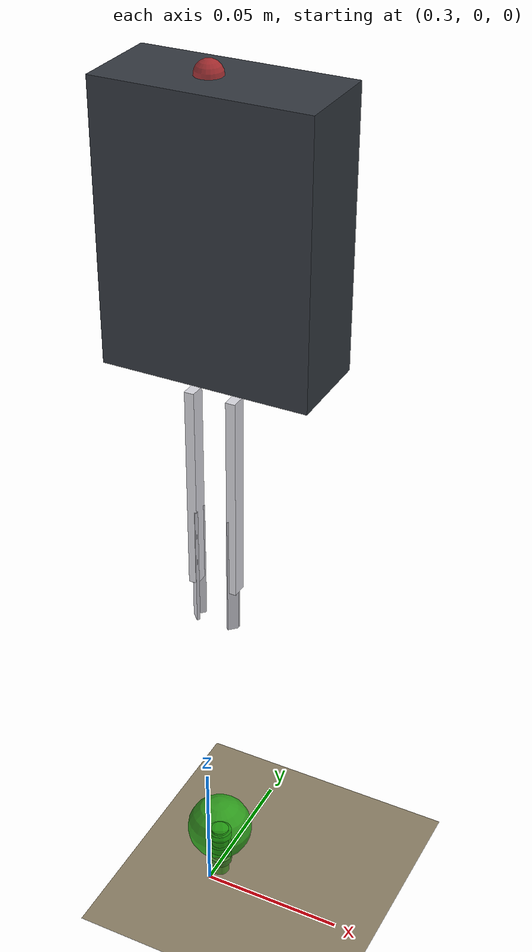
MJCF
<mujoco model="zimmer_grip_test">

  <compiler angle="radian" balanceinertia="true"/>

  <option gravity="0 0 -9.81" timestep="0.0002" integrator="implicitfast"
          iterations="100" noslip_iterations="10" tolerance="1e-10">
    <flag contact="enable"/>
  </option>
  <size njmax="500" nconmax="200"/>

  <default>
    <geom condim="6" friction="1.0 0.005 0.0001" solimp="0 0.999 0.0001 0.5 2" solref="0.0005 1"/>
    <joint armature="0.0001" damping="0.5"/>
  </default>

  <worldbody>

    <!-- ── Floor ─────────────────────────────────────────────────────────── -->
    <geom name="floor" type="plane" size="2 2 0.1" rgba="0.55 0.50 0.40 1"
          friction="0.5 0.005 0.0001"/>

    <!-- ── Kinematic TCP controller (mocap) ──────────────────────────────── -->
    <!-- Set data.mocap_pos[0] in Python to move the gripper. -->
    <body name="tcp" pos="0.31 -0.01 0.300" mocap="true">
      <geom type="sphere" size="0.004" rgba="1 0.2 0.2 0.6"
            contype="0" conaffinity="0"/>
    </body>

    <!-- ── Plant (free rigid body) ───────────────────────────────────────── -->
    <body name="plant" pos="0.31 -0.01 0">
      <freejoint name="plant_freejoint"/>
      <inertial pos="0 0 0.025" mass="0.002"
                diaginertia="8e-8 8e-8 1e-8"/>
      <!-- Grasp cylinder -->
      <geom name="stem"  type="cylinder" pos="0 0 0.029" size="0.003 0.010"
            friction="3.0 0.01 0.001" rgba="0.35 0.60 0.20 1"/>
      <!-- Jam node 1 -->
      <geom name="node1" type="cylinder" pos="0 0 0.025" size="0.004 0.00125"
            friction="3.0 0.01 0.001" rgba="0.25 0.50 0.15 1"/>
      <!-- Jam node 2 -->
      <geom name="node2" type="cylinder" pos="0 0 0.031" size="0.004 0.00125"
            friction="3.0 0.01 0.001" rgba="0.25 0.50 0.15 1"/>
      <!-- Jam node 3 -->
      <geom name="node3" type="cylinder" pos="0 0 0.037" size="0.004 0.00125"
            friction="3.0 0.01 0.001" rgba="0.25 0.50 0.15 1"/>
      <!-- Leaf canopy (visual only — no collision, matches Isaac Lab) -->
      <geom type="sphere" pos="0 0 0.040" size="0.011"
            rgba="0.15 0.70 0.10 0.8" contype="0" conaffinity="0"/>
    </body>

    <!-- ── Zimmer GEP2010IL gripper (welded to tcp mocap) ────────────────── -->
    <body name="gripper_base" pos="0.31 -0.01 0.300">
      <freejoint name="gripper_freejoint"/>
      <inertial pos="0.004 0 -0.040" mass="0.25"
                diaginertia="1.5e-4 1.6e-4 6.0e-5"/>
      <!-- Gripper body housing (visual only) -->
      <geom type="box" size="0.031 0.0135 0.040" pos="0.004 0 -0.040"
            rgba="0.20 0.22 0.25 1" contype="0" conaffinity="0"/>

      <!-- ── Left finger ──────────────────────────────────────────────── -->
      <!-- Joint origin 5 mm left of centre, 80 mm below gripper_base.
           Joint axis +X → closing moves finger rightward (toward x=0). -->
      <body name="finger_left" pos="-0.005 0 -0.080">
        <joint name="finger_left_joint" type="slide" axis="1 0 0"
               range="0 0.010" damping="2.0" armature="0.0001"/>
        <inertial pos="-0.0015 0 -0.050" mass="0.008"
                  diaginertia="1.74e-5 1.73e-5 2.4e-8"/>
        <!-- Blade shaft: inner face at local x=0 -->
        <geom name="fl_blade" type="box"
              pos="-0.0015 0 -0.043" size="0.0015 0.0025 0.033"
              friction="3.0 0.01 0.001" rgba="0.85 0.85 0.88 1"/>
        <!-- V-groove prong toward +Y -->
        <geom name="fl_prong_py" type="box"
              pos="-0.00125 0.00125 -0.070" euler="0 0 -2.356"
              size="0.00175 0.0005 0.020"
              friction="3.0 0.01 0.001" rgba="0.85 0.85 0.88 1"/>
        <!-- V-groove prong toward -Y -->
        <geom name="fl_prong_ny" type="box"
              pos="-0.00125 -0.00125 -0.070" euler="0 0 2.356"
              size="0.00175 0.0005 0.020"
              friction="3.0 0.01 0.001" rgba="0.85 0.85 0.88 1"/>
      </body>

      <!-- ── Right finger (mirror of left) ────────────────────────────── -->
      <!-- Joint origin 5 mm right of centre, 80 mm below gripper_base.
           Joint axis -X → closing moves finger leftward (toward x=0). -->
      <body name="finger_right" pos="0.005 0 -0.080">
        <joint name="finger_right_joint" type="slide" axis="-1 0 0"
               range="0 0.010" damping="2.0" armature="0.0001"/>
        <inertial pos="0.0015 0 -0.050" mass="0.008"
                  diaginertia="1.74e-5 1.73e-5 2.4e-8"/>
        <!-- Blade shaft -->
        <geom name="fr_blade" type="box"
              pos="0.0015 0 -0.043" size="0.0015 0.0025 0.033"
              friction="3.0 0.01 0.001" rgba="0.85 0.85 0.88 1"/>
        <!-- V-groove prong toward +Y -->
        <geom name="fr_prong_py" type="box"
              pos="0.00125 0.00125 -0.070" euler="0 0 -0.785"
              size="0.00175 0.0005 0.020"
              friction="3.0 0.01 0.001" rgba="0.85 0.85 0.88 1"/>
        <!-- V-groove prong toward -Y -->
        <geom name="fr_prong_ny" type="box"
              pos="0.00125 -0.00125 -0.070" euler="0 0 0.785"
              size="0.00175 0.0005 0.020"
              friction="3.0 0.01 0.001" rgba="0.85 0.85 0.88 1"/>
      </body>
    </body>

  </worldbody>

  <!-- ── Contact exclusions ───────────────────────────────────────────────── -->
  <contact>
    <!-- Fingers don't collide with the gripper body housing -->
    <exclude body1="finger_left"  body2="gripper_base"/>
    <exclude body1="finger_right" body2="gripper_base"/>
    <!-- Fingers don't collide with each other (they stop at stem or joint limit) -->
    <exclude body1="finger_left"  body2="finger_right"/>
  </contact>

  <!-- ── Weld gripper to mocap TCP ────────────────────────────────────────── -->
  <equality>
    <!-- Near-rigid weld: solimp dmax=0.999999, solref τ=0.2ms (= dt).
         Keeps gripper_base within ~0.01mm of mocap position even under 200N contacts. -->
    <weld name="gripper_tcp_weld" body1="tcp" body2="gripper_base"
          solref="0.0002 1" solimp="0 0.999999 0.000001 0.5 2"/>
  </equality>

  <!-- ── Finger actuators (position-servo control) ──────────────────────── -->
  <actuator>
    <position name="finger_left_act"  joint="finger_left_joint"
              kp="25000" kv="10" ctrlrange="0 0.010"/>
    <position name="finger_right_act" joint="finger_right_joint"
              kp="25000" kv="10" ctrlrange="0 0.010"/>
  </actuator>

</mujoco>
